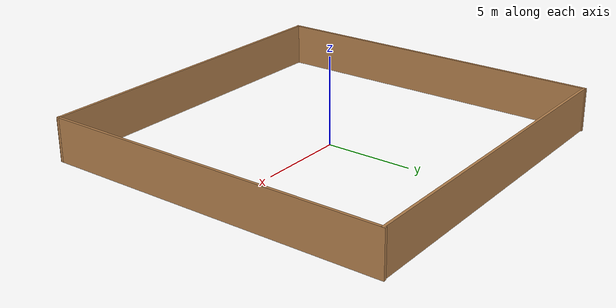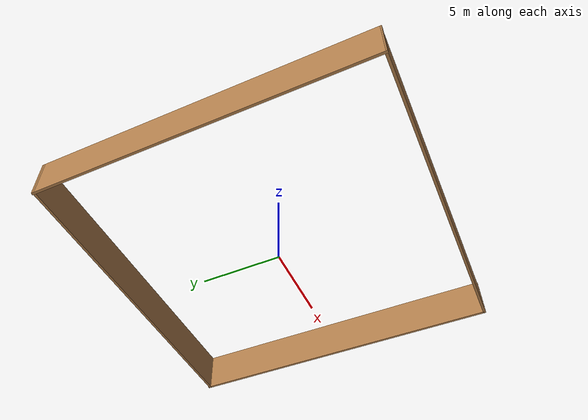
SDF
<?xml version='1.0'?>
<sdf version='1.7'>
  <model name='my_world'>
    <pose>0.007025 0.076938 0 0 -0 0</pose>
    <link name='Wall_4'>
      <collision name='Wall_4_Collision'>
        <geometry>
          <box>
            <size>20.1166 0.15 2.5</size>
          </box>
        </geometry>
        <pose>0 0 1.25 0 -0 0</pose>
      </collision>
      <visual name='Wall_4_Visual'>
        <pose>0 0 1.25 0 -0 0</pose>
        <geometry>
          <box>
            <size>20.1166 0.15 2.5</size>
          </box>
        </geometry>
        <material>
          <script>
            <uri>file://media/materials/scripts/gazebo.material</uri>
            <name>Gazebo/Wood</name>
          </script>
          <ambient>1 1 1 1</ambient>
        </material>
        <meta>
          <layer>0</layer>
        </meta>
      </visual>
      <pose>-9.925 -0 0 0 -0 1.57174</pose>
    </link>
    <link name='Wall_5'>
      <collision name='Wall_5_Collision'>
        <geometry>
          <box>
            <size>20 0.15 2.5</size>
          </box>
        </geometry>
        <pose>0 0 1.25 0 -0 0</pose>
      </collision>
      <visual name='Wall_5_Visual'>
        <pose>0 0 1.25 0 -0 0</pose>
        <geometry>
          <box>
            <size>20 0.15 2.5</size>
          </box>
        </geometry>
        <material>
          <script>
            <uri>file://media/materials/scripts/gazebo.material</uri>
            <name>Gazebo/Wood</name>
          </script>
          <ambient>1 1 1 1</ambient>
        </material>
        <meta>
          <layer>0</layer>
        </meta>
      </visual>
      <pose>-0.009399 9.92688 0 0 -0 0</pose>
    </link>
    <link name='Wall_6'>
      <collision name='Wall_6_Collision'>
        <geometry>
          <box>
            <size>20.1116 0.15 2.5</size>
          </box>
        </geometry>
        <pose>0 0 1.25 0 -0 0</pose>
      </collision>
      <visual name='Wall_6_Visual'>
        <pose>0 0 1.25 0 -0 0</pose>
        <geometry>
          <box>
            <size>20.1116 0.15 2.5</size>
          </box>
        </geometry>
        <material>
          <script>
            <uri>file://media/materials/scripts/gazebo.material</uri>
            <name>Gazebo/Wood</name>
          </script>
          <ambient>1 1 1 1</ambient>
        </material>
        <meta>
          <layer>0</layer>
        </meta>
      </visual>
      <pose>9.925 0.0025 0 0 -0 -1.56986</pose>
    </link>
    <link name='Wall_7'>
      <collision name='Wall_7_Collision'>
        <geometry>
          <box>
            <size>20 0.15 2.5</size>
          </box>
        </geometry>
        <pose>0 0 1.25 0 -0 0</pose>
      </collision>
      <visual name='Wall_7_Visual'>
        <pose>0 0 1.25 0 -0 0</pose>
        <geometry>
          <box>
            <size>20 0.15 2.5</size>
          </box>
        </geometry>
        <material>
          <script>
            <uri>file://media/materials/scripts/gazebo.material</uri>
            <name>Gazebo/Wood</name>
          </script>
          <ambient>1 1 1 1</ambient>
        </material>
        <meta>
          <layer>0</layer>
        </meta>
      </visual>
      <pose>0.009398 -9.95528 0 0 -0 3.14159</pose>
    </link>
    <static>1</static>
  </model>
</sdf>
